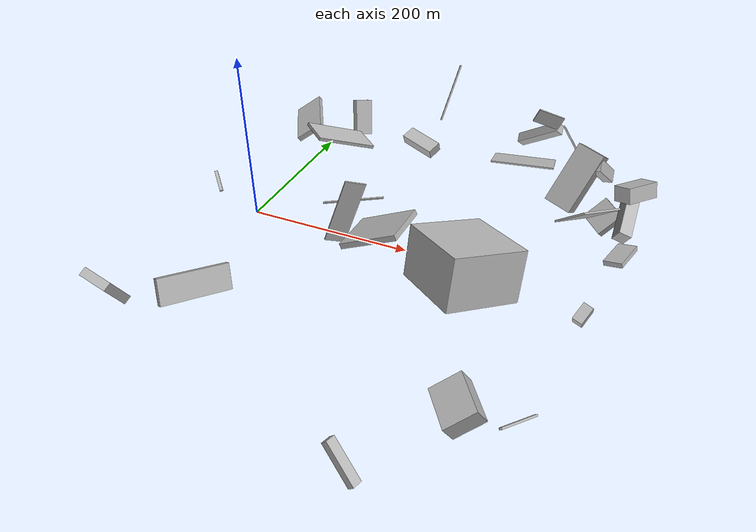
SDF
<sdf version="1.6">
 <world name="default">
  <scene>
   <sky><clouds><speed>12</speed></clouds></sky>
   <ambient>0.4 0.4 0.4 1</ambient>
   <background>0.7 0.7 0.7 1</background>
   <shadows>1</shadows>
  </scene>
  <gravity>0 0 -9.8066</gravity>
  <magnetic_field>6e-06 2.3e-05 -4.2e-05</magnetic_field>
  <physics default="0" name="default_physics" type="ode">
   <ode>
    <solver>
     <type>quick</type>
     <iters>10</iters>
     <sor>1.0</sor>
     <use_dynamic_moi_rescaling>0</use_dynamic_moi_rescaling>
    </solver>
    <constraints>
     <cfm>0</cfm>
     <erp>0.2</erp>
     <contact_max_correcting_vel>100</contact_max_correcting_vel>
     <contact_surface_layer>0.001</contact_surface_layer>
    </constraints>
   </ode>
   <max_step_size>0.004</max_step_size>
   <real_time_factor>1</real_time_factor>
   <real_time_update_rate>250</real_time_update_rate>
  </physics>
  <light name="sun" type="directional">
   <pose>0 0 10 0 0 0</pose>
   <diffuse>0.8 0.8 0.8 1</diffuse>
   <specular>0.2 0.2 0.2 1</specular>
   <attenuation>
    <range>1000</range>
    <constant>0.9</constant>
    <linear>0.01</linear>
    <quadratic>0.001</quadratic>
   </attenuation>
   <direction>-0.5 0.1 -0.9</direction>
  </light>
  <model name="building_1">
   <static>0</static>
   <pose>202.43540368576674 -77.82179125336269 79.62905899549887 0.42318704890768083 -0.07416924417965974 -1.5728825670737658</pose>
   <link name="link">
    <gravity>0</gravity>
    <pose>0 0 3.0 0 0 0</pose>
    <collision name="collision"><geometry><box><size>54 63 6</size></box></geometry></collision>
    <visual name="visual">
     <cast_shadows>0</cast_shadows>
     <geometry><box><size>54 63 6</size></box></geometry>
     <material>
      <script>
       <uri>model://HANNAS_wall/materials/scripts</uri>
       <uri>model://HANNAS_wall/materials/textures</uri>
       <name>vrc/HANNAS_wall</name>
      </script>
     </material>
    </visual>
   </link>
  </model>
  <model name="building_2">
   <static>0</static>
   <pose>410.54120992080846 136.92267424938555 30.607374883955544 -2.6631550552270826 0.709053165512975 1.2498030614933864</pose>
   <link name="link">
    <gravity>0</gravity>
    <pose>0 0 16.5 0 0 0</pose>
    <collision name="collision"><geometry><box><size>16 29 33</size></box></geometry></collision>
    <visual name="visual">
     <cast_shadows>0</cast_shadows>
     <geometry><box><size>16 29 33</size></box></geometry>
     <material>
      <script>
       <uri>model://HANNAS_wall/materials/scripts</uri>
       <uri>model://HANNAS_wall/materials/textures</uri>
       <name>vrc/HANNAS_wall</name>
      </script>
     </material>
    </visual>
   </link>
  </model>
  <model name="building_3">
   <static>0</static>
   <pose>53.05693016217003 223.97177476612381 41.03909412464104 -1.4618642021826662 0.3989031274886969 2.2681515068540317</pose>
   <link name="link">
    <gravity>0</gravity>
    <pose>0 0 11.0 0 0 0</pose>
    <collision name="collision"><geometry><box><size>21 48 22</size></box></geometry></collision>
    <visual name="visual">
     <cast_shadows>0</cast_shadows>
     <geometry><box><size>21 48 22</size></box></geometry>
     <material>
      <script>
       <uri>model://HANNAS_wall/materials/scripts</uri>
       <uri>model://HANNAS_wall/materials/textures</uri>
       <name>vrc/HANNAS_wall</name>
      </script>
     </material>
    </visual>
   </link>
  </model>
  <model name="building_4">
   <static>0</static>
   <pose>396.10966668648115 113.41849832937795 84.48100478838818 -0.8511743062307074 0.2818137817161068 2.969263072760777</pose>
   <link name="link">
    <gravity>0</gravity>
    <pose>0 0 22.0 0 0 0</pose>
    <collision name="collision"><geometry><box><size>10 14 44</size></box></geometry></collision>
    <visual name="visual">
     <cast_shadows>0</cast_shadows>
     <geometry><box><size>10 14 44</size></box></geometry>
     <material>
      <script>
       <uri>model://HANNAS_wall/materials/scripts</uri>
       <uri>model://HANNAS_wall/materials/textures</uri>
       <name>vrc/HANNAS_wall</name>
      </script>
     </material>
    </visual>
   </link>
  </model>
  <model name="building_5">
   <static>0</static>
   <pose>282.34226432796254 226.91321721804115 24.60131307300842 -0.1240442725283741 -1.308455997085794 1.7963661667178399</pose>
   <link name="link">
    <gravity>0</gravity>
    <pose>0 0 23.0 0 0 0</pose>
    <collision name="collision"><geometry><box><size>2 80 46</size></box></geometry></collision>
    <visual name="visual">
     <cast_shadows>0</cast_shadows>
     <geometry><box><size>2 80 46</size></box></geometry>
     <material>
      <script>
       <uri>model://HANNAS_wall/materials/scripts</uri>
       <uri>model://HANNAS_wall/materials/textures</uri>
       <name>vrc/HANNAS_wall</name>
      </script>
     </material>
    </visual>
   </link>
  </model>
  <model name="building_6">
   <static>0</static>
   <pose>417.7407141214211 94.11305562052497 56.028438426053896 1.9684167390922718 -0.4161384468795133 1.5709598811290877</pose>
   <link name="link">
    <gravity>0</gravity>
    <pose>0 0 7.0 0 0 0</pose>
    <collision name="collision"><geometry><box><size>66 17 14</size></box></geometry></collision>
    <visual name="visual">
     <cast_shadows>0</cast_shadows>
     <geometry><box><size>66 17 14</size></box></geometry>
     <material>
      <script>
       <uri>model://HANNAS_wall/materials/scripts</uri>
       <uri>model://HANNAS_wall/materials/textures</uri>
       <name>vrc/HANNAS_wall</name>
      </script>
     </material>
    </visual>
   </link>
  </model>
  <model name="building_7">
   <static>0</static>
   <pose>-74.74206092026431 23.645523935819096 12.706960029612448 1.2955775801753506 0.9576524920806172 2.0458424109935507</pose>
   <link name="link">
    <gravity>0</gravity>
    <pose>0 0 2.0 0 0 0</pose>
    <collision name="collision"><geometry><box><size>4 29 4</size></box></geometry></collision>
    <visual name="visual">
     <cast_shadows>0</cast_shadows>
     <geometry><box><size>4 29 4</size></box></geometry>
     <material>
      <script>
       <uri>model://HANNAS_wall/materials/scripts</uri>
       <uri>model://HANNAS_wall/materials/textures</uri>
       <name>vrc/HANNAS_wall</name>
      </script>
     </material>
    </visual>
   </link>
  </model>
  <model name="building_8">
   <static>0</static>
   <pose>131.74350721104483 -15.862078264263923 45.571953734918864 1.6198793676432586 0.33512087065262364 0.7164830869789931</pose>
   <link name="link">
    <gravity>0</gravity>
    <pose>0 0 1.0 0 0 0</pose>
    <collision name="collision"><geometry><box><size>25 80 2</size></box></geometry></collision>
    <visual name="visual">
     <cast_shadows>0</cast_shadows>
     <geometry><box><size>25 80 2</size></box></geometry>
     <material>
      <script>
       <uri>model://HANNAS_wall/materials/scripts</uri>
       <uri>model://HANNAS_wall/materials/textures</uri>
       <name>vrc/HANNAS_wall</name>
      </script>
     </material>
    </visual>
   </link>
  </model>
  <model name="building_9">
   <static>0</static>
   <pose>343.1440559340303 -229.46846506721894 32.70314463214513 1.3186784588390519 -1.011414681434699 -2.271199718768673</pose>
   <link name="link">
    <gravity>0</gravity>
    <pose>0 0 19.5 0 0 0</pose>
    <collision name="collision"><geometry><box><size>21 32 39</size></box></geometry></collision>
    <visual name="visual">
     <cast_shadows>0</cast_shadows>
     <geometry><box><size>21 32 39</size></box></geometry>
     <material>
      <script>
       <uri>model://HANNAS_wall/materials/scripts</uri>
       <uri>model://HANNAS_wall/materials/textures</uri>
       <name>vrc/HANNAS_wall</name>
      </script>
     </material>
    </visual>
   </link>
  </model>
  <model name="building_10">
   <static>0</static>
   <pose>316.9076451592985 -51.011644772935846 61.81577720398463 -0.6664438648128751 -1.3058418982822275 1.5280998088296651</pose>
   <link name="link">
    <gravity>0</gravity>
    <pose>0 0 40.0 0 0 0</pose>
    <collision name="collision"><geometry><box><size>54 80 80</size></box></geometry></collision>
    <visual name="visual">
     <cast_shadows>0</cast_shadows>
     <geometry><box><size>54 80 80</size></box></geometry>
     <material>
      <script>
       <uri>model://HANNAS_wall/materials/scripts</uri>
       <uri>model://HANNAS_wall/materials/textures</uri>
       <name>vrc/HANNAS_wall</name>
      </script>
     </material>
    </visual>
   </link>
  </model>
  <model name="building_11">
   <static>0</static>
   <pose>97.38695134863848 -231.34339129721525 81.4568663282303 0.4397117516692182 -0.20362102845181046 -2.0883404992081984</pose>
   <link name="link">
    <gravity>0</gravity>
    <pose>0 0 12.0 0 0 0</pose>
    <collision name="collision"><geometry><box><size>65 6 24</size></box></geometry></collision>
    <visual name="visual">
     <cast_shadows>0</cast_shadows>
     <geometry><box><size>65 6 24</size></box></geometry>
     <material>
      <script>
       <uri>model://HANNAS_wall/materials/scripts</uri>
       <uri>model://HANNAS_wall/materials/textures</uri>
       <name>vrc/HANNAS_wall</name>
      </script>
     </material>
    </visual>
   </link>
  </model>
  <model name="building_12">
   <static>0</static>
   <pose>59.454431420441786 121.01559096881515 63.063227031748 3.09145271374916 -0.3821539454563723 -2.265053213177408</pose>
   <link name="link">
    <gravity>0</gravity>
    <pose>0 0 2.0 0 0 0</pose>
    <collision name="collision"><geometry><box><size>80 43 4</size></box></geometry></collision>
    <visual name="visual">
     <cast_shadows>0</cast_shadows>
     <geometry><box><size>80 43 4</size></box></geometry>
     <material>
      <script>
       <uri>model://HANNAS_wall/materials/scripts</uri>
       <uri>model://HANNAS_wall/materials/textures</uri>
       <name>vrc/HANNAS_wall</name>
      </script>
     </material>
    </visual>
   </link>
  </model>
  <model name="building_13">
   <static>0</static>
   <pose>264.7371171131323 -286.7776450784599 17.86408059907783 2.4261504817538553 -0.11160138289337473 -1.8728244457140597</pose>
   <link name="link">
    <gravity>0</gravity>
    <pose>0 0 4.0 0 0 0</pose>
    <collision name="collision"><geometry><box><size>9 41 8</size></box></geometry></collision>
    <visual name="visual">
     <cast_shadows>0</cast_shadows>
     <geometry><box><size>9 41 8</size></box></geometry>
     <material>
      <script>
       <uri>model://HANNAS_wall/materials/scripts</uri>
       <uri>model://HANNAS_wall/materials/textures</uri>
       <name>vrc/HANNAS_wall</name>
      </script>
     </material>
    </visual>
   </link>
  </model>
  <model name="building_14">
   <static>0</static>
   <pose>368.8743693377525 62.31532655182092 51.42785729984647 -0.8693118876589605 0.032913198913954056 -2.563465093566408</pose>
   <link name="link">
    <gravity>0</gravity>
    <pose>0 0 40.0 0 0 0</pose>
    <collision name="collision"><geometry><box><size>37 2 80</size></box></geometry></collision>
    <visual name="visual">
     <cast_shadows>0</cast_shadows>
     <geometry><box><size>37 2 80</size></box></geometry>
     <material>
      <script>
       <uri>model://HANNAS_wall/materials/scripts</uri>
       <uri>model://HANNAS_wall/materials/textures</uri>
       <name>vrc/HANNAS_wall</name>
      </script>
     </material>
    </visual>
   </link>
  </model>
  <model name="building_15">
   <static>0</static>
   <pose>427.2486569238028 5.548015513661072 126.72400388293202 0.3301716508991618 -0.03363711932455439 -2.2927177044252067</pose>
   <link name="link">
    <gravity>0</gravity>
    <pose>0 0 7.5 0 0 0</pose>
    <collision name="collision"><geometry><box><size>33 19 15</size></box></geometry></collision>
    <visual name="visual">
     <cast_shadows>0</cast_shadows>
     <geometry><box><size>33 19 15</size></box></geometry>
     <material>
      <script>
       <uri>model://HANNAS_wall/materials/scripts</uri>
       <uri>model://HANNAS_wall/materials/textures</uri>
       <name>vrc/HANNAS_wall</name>
      </script>
     </material>
    </visual>
   </link>
  </model>
  <model name="building_16">
   <static>0</static>
   <pose>363.12839809799027 71.33415806535571 97.57598137428955 -2.7089793495932906 -1.001590049086889 0.9226280534925748</pose>
   <link name="link">
    <gravity>0</gravity>
    <pose>0 0 14.5 0 0 0</pose>
    <collision name="collision"><geometry><box><size>69 30 29</size></box></geometry></collision>
    <visual name="visual">
     <cast_shadows>0</cast_shadows>
     <geometry><box><size>69 30 29</size></box></geometry>
     <material>
      <script>
       <uri>model://HANNAS_wall/materials/scripts</uri>
       <uri>model://HANNAS_wall/materials/textures</uri>
       <name>vrc/HANNAS_wall</name>
      </script>
     </material>
    </visual>
   </link>
  </model>
  <model name="building_17">
   <static>0</static>
   <pose>-14.260234920822418 -225.00206251451726 56.059585431530095 -2.084916416305028 -0.1311742599841633 2.991598077895527</pose>
   <link name="link">
    <gravity>0</gravity>
    <pose>0 0 4.5 0 0 0</pose>
    <collision name="collision"><geometry><box><size>34 37 9</size></box></geometry></collision>
    <visual name="visual">
     <cast_shadows>0</cast_shadows>
     <geometry><box><size>34 37 9</size></box></geometry>
     <material>
      <script>
       <uri>model://HANNAS_wall/materials/scripts</uri>
       <uri>model://HANNAS_wall/materials/textures</uri>
       <name>vrc/HANNAS_wall</name>
      </script>
     </material>
    </visual>
   </link>
  </model>
  <model name="building_18">
   <static>0</static>
   <pose>-14.982476773777135 168.11635404671776 27.90873743235051 1.4284289064160567 -0.9897008855384091 -2.5121027155441937</pose>
   <link name="link">
    <gravity>0</gravity>
    <pose>0 0 40.0 0 0 0</pose>
    <collision name="collision"><geometry><box><size>7 40 80</size></box></geometry></collision>
    <visual name="visual">
     <cast_shadows>0</cast_shadows>
     <geometry><box><size>7 40 80</size></box></geometry>
     <material>
      <script>
       <uri>model://HANNAS_wall/materials/scripts</uri>
       <uri>model://HANNAS_wall/materials/textures</uri>
       <name>vrc/HANNAS_wall</name>
      </script>
     </material>
    </visual>
   </link>
  </model>
  <model name="building_19">
   <static>0</static>
   <pose>269.52535702782797 249.88229882979311 37.8760943868918 0.816828853921158 0.648850096751598 0.7005176317360784</pose>
   <link name="link">
    <gravity>0</gravity>
    <pose>0 0 32.5 0 0 0</pose>
    <collision name="collision"><geometry><box><size>12 13 65</size></box></geometry></collision>
    <visual name="visual">
     <cast_shadows>0</cast_shadows>
     <geometry><box><size>12 13 65</size></box></geometry>
     <material>
      <script>
       <uri>model://HANNAS_wall/materials/scripts</uri>
       <uri>model://HANNAS_wall/materials/textures</uri>
       <name>vrc/HANNAS_wall</name>
      </script>
     </material>
    </visual>
   </link>
  </model>
  <model name="building_20">
   <static>0</static>
   <pose>121.00555207987452 205.093210135576 34.90668637374718 -1.8898047702053278 -1.1976904066914305 -1.663084745642602</pose>
   <link name="link">
    <gravity>0</gravity>
    <pose>0 0 25.0 0 0 0</pose>
    <collision name="collision"><geometry><box><size>13 19 50</size></box></geometry></collision>
    <visual name="visual">
     <cast_shadows>0</cast_shadows>
     <geometry><box><size>13 19 50</size></box></geometry>
     <material>
      <script>
       <uri>model://HANNAS_wall/materials/scripts</uri>
       <uri>model://HANNAS_wall/materials/textures</uri>
       <name>vrc/HANNAS_wall</name>
      </script>
     </material>
    </visual>
   </link>
  </model>
  <model name="building_21">
   <static>0</static>
   <pose>342.93075270219447 277.4327320555623 21.492650424867854 0.7056405011455317 0.5748850807959542 -2.743010626248633</pose>
   <link name="link">
    <gravity>0</gravity>
    <pose>0 0 19.0 0 0 0</pose>
    <collision name="collision"><geometry><box><size>2 18 38</size></box></geometry></collision>
    <visual name="visual">
     <cast_shadows>0</cast_shadows>
     <geometry><box><size>2 18 38</size></box></geometry>
     <material>
      <script>
       <uri>model://HANNAS_wall/materials/scripts</uri>
       <uri>model://HANNAS_wall/materials/textures</uri>
       <name>vrc/HANNAS_wall</name>
      </script>
     </material>
    </visual>
   </link>
  </model>
  <model name="building_22">
   <static>0</static>
   <pose>380.42294361204824 -193.06197699691836 14.411853226845231 -2.3714067240653294 0.42698420674588405 1.0949451254066922</pose>
   <link name="link">
    <gravity>0</gravity>
    <pose>0 0 1.5 0 0 0</pose>
    <collision name="collision"><geometry><box><size>53 2 3</size></box></geometry></collision>
    <visual name="visual">
     <cast_shadows>0</cast_shadows>
     <geometry><box><size>53 2 3</size></box></geometry>
     <material>
      <script>
       <uri>model://HANNAS_wall/materials/scripts</uri>
       <uri>model://HANNAS_wall/materials/textures</uri>
       <name>vrc/HANNAS_wall</name>
      </script>
     </material>
    </visual>
   </link>
  </model>
  <model name="building_23">
   <static>0</static>
   <pose>159.31445687621257 267.02103023433193 79.44849966879048 1.202837037875551 0.3915684305766472 0.4825165511524952</pose>
   <link name="link">
    <gravity>0</gravity>
    <pose>0 0 1.0 0 0 0</pose>
    <collision name="collision"><geometry><box><size>2 80 2</size></box></geometry></collision>
    <visual name="visual">
     <cast_shadows>0</cast_shadows>
     <geometry><box><size>2 80 2</size></box></geometry>
     <material>
      <script>
       <uri>model://HANNAS_wall/materials/scripts</uri>
       <uri>model://HANNAS_wall/materials/textures</uri>
       <name>vrc/HANNAS_wall</name>
      </script>
     </material>
    </visual>
   </link>
  </model>
  <model name="building_24">
   <static>0</static>
   <pose>407.21917937415697 -92.32773547008945 54.906377225315985 -0.1726411160367514 0.5353616255784994 -1.9961239552413768</pose>
   <link name="link">
    <gravity>0</gravity>
    <pose>0 0 5.0 0 0 0</pose>
    <collision name="collision"><geometry><box><size>18 10 10</size></box></geometry></collision>
    <visual name="visual">
     <cast_shadows>0</cast_shadows>
     <geometry><box><size>18 10 10</size></box></geometry>
     <material>
      <script>
       <uri>model://HANNAS_wall/materials/scripts</uri>
       <uri>model://HANNAS_wall/materials/textures</uri>
       <name>vrc/HANNAS_wall</name>
      </script>
     </material>
    </visual>
   </link>
  </model>
  <model name="building_25">
   <static>0</static>
   <pose>316.85927636931655 170.15260813403992 119.8070982578981 2.777871622277663 0.13952982017488835 -1.2287705417469619</pose>
   <link name="link">
    <gravity>0</gravity>
    <pose>0 0 8.5 0 0 0</pose>
    <collision name="collision"><geometry><box><size>2 33 17</size></box></geometry></collision>
    <visual name="visual">
     <cast_shadows>0</cast_shadows>
     <geometry><box><size>2 33 17</size></box></geometry>
     <material>
      <script>
       <uri>model://HANNAS_wall/materials/scripts</uri>
       <uri>model://HANNAS_wall/materials/textures</uri>
       <name>vrc/HANNAS_wall</name>
      </script>
     </material>
    </visual>
   </link>
  </model>
  <model name="building_26">
   <static>0</static>
   <pose>121.68543268748752 26.304806715886627 34.27426208533841 3.038557377804193 0.05099581739339862 -2.6588938412816874</pose>
   <link name="link">
    <gravity>0</gravity>
    <pose>0 0 1.0 0 0 0</pose>
    <collision name="collision"><geometry><box><size>72 2 2</size></box></geometry></collision>
    <visual name="visual">
     <cast_shadows>0</cast_shadows>
     <geometry><box><size>72 2 2</size></box></geometry>
     <material>
      <script>
       <uri>model://HANNAS_wall/materials/scripts</uri>
       <uri>model://HANNAS_wall/materials/textures</uri>
       <name>vrc/HANNAS_wall</name>
      </script>
     </material>
    </visual>
   </link>
  </model>
  <model name="building_27">
   <static>0</static>
   <pose>430.7929077934241 -11.585334575231014 83.79947963680999 1.5812853962588655 -0.29016294605821435 -0.2881640307720925</pose>
   <link name="link">
    <gravity>0</gravity>
    <pose>0 0 17.0 0 0 0</pose>
    <collision name="collision"><geometry><box><size>18 5 34</size></box></geometry></collision>
    <visual name="visual">
     <cast_shadows>0</cast_shadows>
     <geometry><box><size>18 5 34</size></box></geometry>
     <material>
      <script>
       <uri>model://HANNAS_wall/materials/scripts</uri>
       <uri>model://HANNAS_wall/materials/textures</uri>
       <name>vrc/HANNAS_wall</name>
      </script>
     </material>
    </visual>
   </link>
  </model>
 </world>
</sdf>
